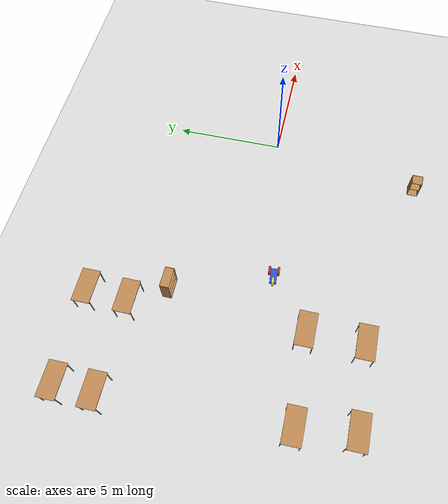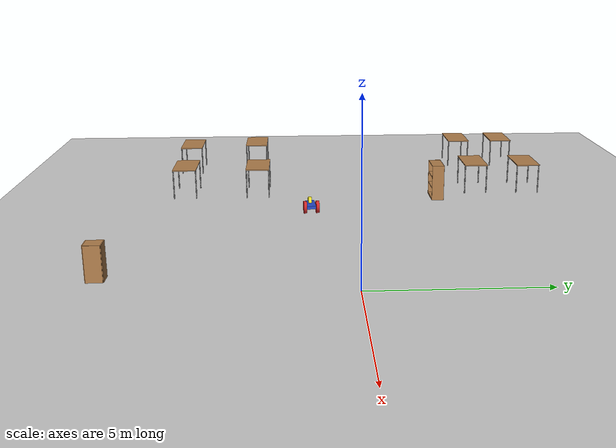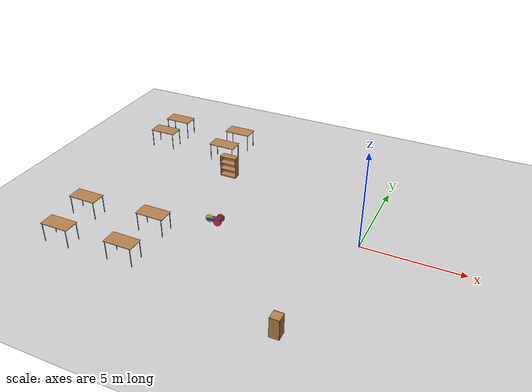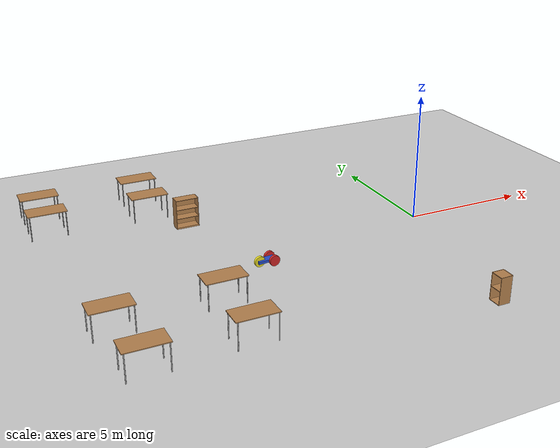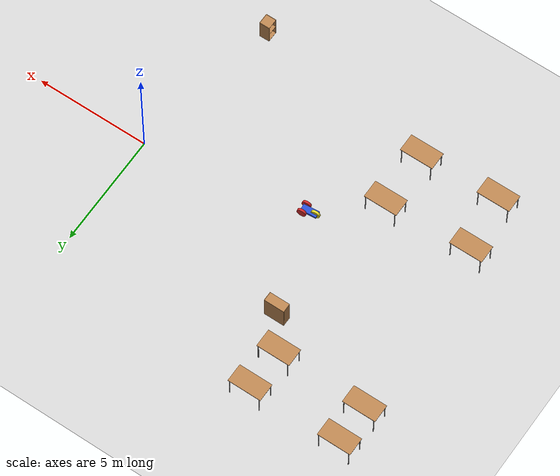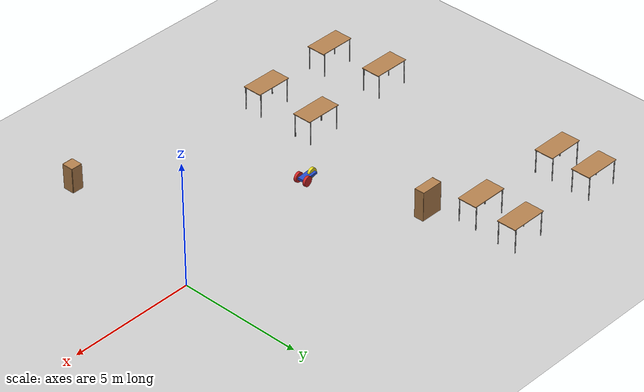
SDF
<sdf version="1.6">
 <world name="default">
  <model name="ground_plane">
   <static>1</static>
   <link name="link">
    <collision name="collision">
     <geometry><plane><normal>0 0 1</normal><size>100 100</size></plane></geometry>
     <surface><friction><ode><mu>100</mu><mu2>50</mu2></ode></friction></surface>
    </collision>
    <visual name="visual">
     <cast_shadows>0</cast_shadows>
     <geometry><plane><normal>0 0 1</normal><size>100 100</size></plane></geometry>
     <material>
      <script><uri>file://media/materials/scripts/gazebo.material</uri><name>Gazebo/Grey</name></script>
     </material>
    </visual>
   </link>
  </model>
  <model name="bookshelf">
   <static>1</static>
   <link name="link">
    <inertial><mass>1</mass></inertial>
    <collision name="back">
     <pose>0 0.005 0.6 0 -0 0</pose>
     <geometry><box><size>0.9 0.01 1.2</size></box></geometry>
    </collision>
    <visual name="visual1">
     <pose>0 0.005 0.6 0 -0 0</pose>
     <geometry><box><size>0.9 0.01 1.2</size></box></geometry>
     <material>
      <script><uri>file://media/materials/scripts/gazebo.material</uri><name>Gazebo/Wood</name></script>
     </material>
    </visual>
    <collision name="left_side">
     <pose>0.45 -0.195 0.6 0 -0 0</pose>
     <geometry><box><size>0.02 0.4 1.2</size></box></geometry>
    </collision>
    <visual name="visual2">
     <pose>0.45 -0.195 0.6 0 -0 0</pose>
     <geometry><box><size>0.02 0.4 1.2</size></box></geometry>
     <material>
      <script><uri>file://media/materials/scripts/gazebo.material</uri><name>Gazebo/Wood</name></script>
     </material>
    </visual>
    <collision name="right_side">
     <pose>-0.45 -0.195 0.6 0 -0 0</pose>
     <geometry><box><size>0.02 0.4 1.2</size></box></geometry>
    </collision>
    <visual name="visual3">
     <pose>-0.45 -0.195 0.6 0 -0 0</pose>
     <geometry><box><size>0.02 0.4 1.2</size></box></geometry>
     <material>
      <script><uri>file://media/materials/scripts/gazebo.material</uri><name>Gazebo/Wood</name></script>
     </material>
    </visual>
    <collision name="bottom">
     <pose>0 -0.195 0.03 0 -0 0</pose>
     <geometry><box><size>0.88 0.4 0.06</size></box></geometry>
    </collision>
    <visual name="visual4">
     <pose>0 -0.195 0.03 0 -0 0</pose>
     <geometry><box><size>0.88 0.4 0.06</size></box></geometry>
     <material>
      <script><uri>file://media/materials/scripts/gazebo.material</uri><name>Gazebo/Wood</name></script>
     </material>
    </visual>
    <collision name="top">
     <pose>0 -0.195 1.19 0 -0 0</pose>
     <geometry><box><size>0.88 0.4 0.02</size></box></geometry>
    </collision>
    <visual name="visual5">
     <pose>0 -0.195 1.19 0 -0 0</pose>
     <geometry><box><size>0.88 0.4 0.02</size></box></geometry>
     <material>
      <script><uri>file://media/materials/scripts/gazebo.material</uri><name>Gazebo/Wood</name></script>
     </material>
    </visual>
    <collision name="low_shelf">
     <pose>0 -0.195 0.43 0 -0 0</pose>
     <geometry><box><size>0.88 0.4 0.02</size></box></geometry>
    </collision>
    <visual name="visual6">
     <pose>0 -0.195 0.43 0 -0 0</pose>
     <geometry><box><size>0.88 0.4 0.02</size></box></geometry>
     <material>
      <script><uri>file://media/materials/scripts/gazebo.material</uri><name>Gazebo/Wood</name></script>
     </material>
    </visual>
    <collision name="high_shelf">
     <pose>0 -0.195 0.8 0 -0 0</pose>
     <geometry><box><size>0.88 0.4 0.02</size></box></geometry>
    </collision>
    <visual name="visual7">
     <pose>0 -0.195 0.8 0 -0 0</pose>
     <geometry><box><size>0.88 0.4 0.02</size></box></geometry>
     <material>
      <script><uri>file://media/materials/scripts/gazebo.material</uri><name>Gazebo/Wood</name></script>
     </material>
    </visual>
   </link>
   <pose>-8.52294 3.40116 0 0 -0 0</pose>
  </model>
  <model name="table">
   <static>1</static>
   <link name="link">
    <collision name="surface">
     <pose>0 0 1 0 -0 0</pose>
     <geometry><box><size>1.5 0.8 0.03</size></box></geometry>
     <surface><friction><ode><mu>0.6</mu><mu2>0.6</mu2></ode></friction></surface>
    </collision>
    <visual name="visual1">
     <pose>0 0 1 0 -0 0</pose>
     <geometry><box><size>1.5 0.8 0.03</size></box></geometry>
     <material>
      <script><uri>file://media/materials/scripts/gazebo.material</uri><name>Gazebo/Wood</name></script>
     </material>
    </visual>
    <collision name="front_left_leg">
     <pose>0.68 0.38 0.5 0 -0 0</pose>
     <geometry><cylinder><radius>0.02</radius><length>1</length></cylinder></geometry>
    </collision>
    <visual name="front_left_leg">
     <pose>0.68 0.38 0.5 0 -0 0</pose>
     <geometry><cylinder><radius>0.02</radius><length>1</length></cylinder></geometry>
     <material>
      <script><uri>file://media/materials/scripts/gazebo.material</uri><name>Gazebo/Grey</name></script>
     </material>
    </visual>
    <collision name="front_right_leg">
     <pose>0.68 -0.38 0.5 0 -0 0</pose>
     <geometry><cylinder><radius>0.02</radius><length>1</length></cylinder></geometry>
    </collision>
    <visual name="front_right_leg">
     <pose>0.68 -0.38 0.5 0 -0 0</pose>
     <geometry><cylinder><radius>0.02</radius><length>1</length></cylinder></geometry>
     <material>
      <script><uri>file://media/materials/scripts/gazebo.material</uri><name>Gazebo/Grey</name></script>
     </material>
    </visual>
    <collision name="back_right_leg">
     <pose>-0.68 -0.38 0.5 0 -0 0</pose>
     <geometry><cylinder><radius>0.02</radius><length>1</length></cylinder></geometry>
    </collision>
    <visual name="back_right_leg">
     <pose>-0.68 -0.38 0.5 0 -0 0</pose>
     <geometry><cylinder><radius>0.02</radius><length>1</length></cylinder></geometry>
     <material>
      <script><uri>file://media/materials/scripts/gazebo.material</uri><name>Gazebo/Grey</name></script>
     </material>
    </visual>
    <collision name="back_left_leg">
     <pose>-0.68 0.38 0.5 0 -0 0</pose>
     <geometry><cylinder><radius>0.02</radius><length>1</length></cylinder></geometry>
    </collision>
    <visual name="back_left_leg">
     <pose>-0.68 0.38 0.5 0 -0 0</pose>
     <geometry><cylinder><radius>0.02</radius><length>1</length></cylinder></geometry>
     <material>
      <script><uri>file://media/materials/scripts/gazebo.material</uri><name>Gazebo/Grey</name></script>
     </material>
    </visual>
   </link>
   <pose>-13.587 6.42629 0 0 -0 0</pose>
  </model>
  <model name="table_0">
   <static>1</static>
   <link name="link">
    <collision name="surface">
     <pose>0 0 1 0 -0 0</pose>
     <geometry><box><size>1.5 0.8 0.03</size></box></geometry>
     <surface><friction><ode><mu>0.6</mu><mu2>0.6</mu2></ode></friction></surface>
    </collision>
    <visual name="visual1">
     <pose>0 0 1 0 -0 0</pose>
     <geometry><box><size>1.5 0.8 0.03</size></box></geometry>
     <material>
      <script><uri>file://media/materials/scripts/gazebo.material</uri><name>Gazebo/Wood</name></script>
     </material>
    </visual>
    <collision name="front_left_leg">
     <pose>0.68 0.38 0.5 0 -0 0</pose>
     <geometry><cylinder><radius>0.02</radius><length>1</length></cylinder></geometry>
    </collision>
    <visual name="front_left_leg">
     <pose>0.68 0.38 0.5 0 -0 0</pose>
     <geometry><cylinder><radius>0.02</radius><length>1</length></cylinder></geometry>
     <material>
      <script><uri>file://media/materials/scripts/gazebo.material</uri><name>Gazebo/Grey</name></script>
     </material>
    </visual>
    <collision name="front_right_leg">
     <pose>0.68 -0.38 0.5 0 -0 0</pose>
     <geometry><cylinder><radius>0.02</radius><length>1</length></cylinder></geometry>
    </collision>
    <visual name="front_right_leg">
     <pose>0.68 -0.38 0.5 0 -0 0</pose>
     <geometry><cylinder><radius>0.02</radius><length>1</length></cylinder></geometry>
     <material>
      <script><uri>file://media/materials/scripts/gazebo.material</uri><name>Gazebo/Grey</name></script>
     </material>
    </visual>
    <collision name="back_right_leg">
     <pose>-0.68 -0.38 0.5 0 -0 0</pose>
     <geometry><cylinder><radius>0.02</radius><length>1</length></cylinder></geometry>
    </collision>
    <visual name="back_right_leg">
     <pose>-0.68 -0.38 0.5 0 -0 0</pose>
     <geometry><cylinder><radius>0.02</radius><length>1</length></cylinder></geometry>
     <material>
      <script><uri>file://media/materials/scripts/gazebo.material</uri><name>Gazebo/Grey</name></script>
     </material>
    </visual>
    <collision name="back_left_leg">
     <pose>-0.68 0.38 0.5 0 -0 0</pose>
     <geometry><cylinder><radius>0.02</radius><length>1</length></cylinder></geometry>
    </collision>
    <visual name="back_left_leg">
     <pose>-0.68 0.38 0.5 0 -0 0</pose>
     <geometry><cylinder><radius>0.02</radius><length>1</length></cylinder></geometry>
     <material>
      <script><uri>file://media/materials/scripts/gazebo.material</uri><name>Gazebo/Grey</name></script>
     </material>
    </visual>
   </link>
   <pose>-13.6033 4.76301 0 0 -0 0</pose>
  </model>
  <model name="table_1">
   <static>1</static>
   <link name="link">
    <collision name="surface">
     <pose>0 0 1 0 -0 0</pose>
     <geometry><box><size>1.5 0.8 0.03</size></box></geometry>
     <surface><friction><ode><mu>0.6</mu><mu2>0.6</mu2></ode></friction></surface>
    </collision>
    <visual name="visual1">
     <pose>0 0 1 0 -0 0</pose>
     <geometry><box><size>1.5 0.8 0.03</size></box></geometry>
     <material>
      <script><uri>file://media/materials/scripts/gazebo.material</uri><name>Gazebo/Wood</name></script>
     </material>
    </visual>
    <collision name="front_left_leg">
     <pose>0.68 0.38 0.5 0 -0 0</pose>
     <geometry><cylinder><radius>0.02</radius><length>1</length></cylinder></geometry>
    </collision>
    <visual name="front_left_leg">
     <pose>0.68 0.38 0.5 0 -0 0</pose>
     <geometry><cylinder><radius>0.02</radius><length>1</length></cylinder></geometry>
     <material>
      <script><uri>file://media/materials/scripts/gazebo.material</uri><name>Gazebo/Grey</name></script>
     </material>
    </visual>
    <collision name="front_right_leg">
     <pose>0.68 -0.38 0.5 0 -0 0</pose>
     <geometry><cylinder><radius>0.02</radius><length>1</length></cylinder></geometry>
    </collision>
    <visual name="front_right_leg">
     <pose>0.68 -0.38 0.5 0 -0 0</pose>
     <geometry><cylinder><radius>0.02</radius><length>1</length></cylinder></geometry>
     <material>
      <script><uri>file://media/materials/scripts/gazebo.material</uri><name>Gazebo/Grey</name></script>
     </material>
    </visual>
    <collision name="back_right_leg">
     <pose>-0.68 -0.38 0.5 0 -0 0</pose>
     <geometry><cylinder><radius>0.02</radius><length>1</length></cylinder></geometry>
    </collision>
    <visual name="back_right_leg">
     <pose>-0.68 -0.38 0.5 0 -0 0</pose>
     <geometry><cylinder><radius>0.02</radius><length>1</length></cylinder></geometry>
     <material>
      <script><uri>file://media/materials/scripts/gazebo.material</uri><name>Gazebo/Grey</name></script>
     </material>
    </visual>
    <collision name="back_left_leg">
     <pose>-0.68 0.38 0.5 0 -0 0</pose>
     <geometry><cylinder><radius>0.02</radius><length>1</length></cylinder></geometry>
    </collision>
    <visual name="back_left_leg">
     <pose>-0.68 0.38 0.5 0 -0 0</pose>
     <geometry><cylinder><radius>0.02</radius><length>1</length></cylinder></geometry>
     <material>
      <script><uri>file://media/materials/scripts/gazebo.material</uri><name>Gazebo/Grey</name></script>
     </material>
    </visual>
   </link>
   <pose>-9.54652 6.49752 0 0 -0 0</pose>
  </model>
  <model name="table_2">
   <static>1</static>
   <link name="link">
    <collision name="surface">
     <pose>0 0 1 0 -0 0</pose>
     <geometry><box><size>1.5 0.8 0.03</size></box></geometry>
     <surface><friction><ode><mu>0.6</mu><mu2>0.6</mu2></ode></friction></surface>
    </collision>
    <visual name="visual1">
     <pose>0 0 1 0 -0 0</pose>
     <geometry><box><size>1.5 0.8 0.03</size></box></geometry>
     <material>
      <script><uri>file://media/materials/scripts/gazebo.material</uri><name>Gazebo/Wood</name></script>
     </material>
    </visual>
    <collision name="front_left_leg">
     <pose>0.68 0.38 0.5 0 -0 0</pose>
     <geometry><cylinder><radius>0.02</radius><length>1</length></cylinder></geometry>
    </collision>
    <visual name="front_left_leg">
     <pose>0.68 0.38 0.5 0 -0 0</pose>
     <geometry><cylinder><radius>0.02</radius><length>1</length></cylinder></geometry>
     <material>
      <script><uri>file://media/materials/scripts/gazebo.material</uri><name>Gazebo/Grey</name></script>
     </material>
    </visual>
    <collision name="front_right_leg">
     <pose>0.68 -0.38 0.5 0 -0 0</pose>
     <geometry><cylinder><radius>0.02</radius><length>1</length></cylinder></geometry>
    </collision>
    <visual name="front_right_leg">
     <pose>0.68 -0.38 0.5 0 -0 0</pose>
     <geometry><cylinder><radius>0.02</radius><length>1</length></cylinder></geometry>
     <material>
      <script><uri>file://media/materials/scripts/gazebo.material</uri><name>Gazebo/Grey</name></script>
     </material>
    </visual>
    <collision name="back_right_leg">
     <pose>-0.68 -0.38 0.5 0 -0 0</pose>
     <geometry><cylinder><radius>0.02</radius><length>1</length></cylinder></geometry>
    </collision>
    <visual name="back_right_leg">
     <pose>-0.68 -0.38 0.5 0 -0 0</pose>
     <geometry><cylinder><radius>0.02</radius><length>1</length></cylinder></geometry>
     <material>
      <script><uri>file://media/materials/scripts/gazebo.material</uri><name>Gazebo/Grey</name></script>
     </material>
    </visual>
    <collision name="back_left_leg">
     <pose>-0.68 0.38 0.5 0 -0 0</pose>
     <geometry><cylinder><radius>0.02</radius><length>1</length></cylinder></geometry>
    </collision>
    <visual name="back_left_leg">
     <pose>-0.68 0.38 0.5 0 -0 0</pose>
     <geometry><cylinder><radius>0.02</radius><length>1</length></cylinder></geometry>
     <material>
      <script><uri>file://media/materials/scripts/gazebo.material</uri><name>Gazebo/Grey</name></script>
     </material>
    </visual>
   </link>
   <pose>-9.61607 4.67874 0 0 -0 0</pose>
  </model>
  <model name="table_3">
   <static>1</static>
   <link name="link">
    <collision name="surface">
     <pose>0 0 1 0 -0 0</pose>
     <geometry><box><size>1.5 0.8 0.03</size></box></geometry>
     <surface><friction><ode><mu>0.6</mu><mu2>0.6</mu2></ode></friction></surface>
    </collision>
    <visual name="visual1">
     <pose>0 0 1 0 -0 0</pose>
     <geometry><box><size>1.5 0.8 0.03</size></box></geometry>
     <material>
      <script><uri>file://media/materials/scripts/gazebo.material</uri><name>Gazebo/Wood</name></script>
     </material>
    </visual>
    <collision name="front_left_leg">
     <pose>0.68 0.38 0.5 0 -0 0</pose>
     <geometry><cylinder><radius>0.02</radius><length>1</length></cylinder></geometry>
    </collision>
    <visual name="front_left_leg">
     <pose>0.68 0.38 0.5 0 -0 0</pose>
     <geometry><cylinder><radius>0.02</radius><length>1</length></cylinder></geometry>
     <material>
      <script><uri>file://media/materials/scripts/gazebo.material</uri><name>Gazebo/Grey</name></script>
     </material>
    </visual>
    <collision name="front_right_leg">
     <pose>0.68 -0.38 0.5 0 -0 0</pose>
     <geometry><cylinder><radius>0.02</radius><length>1</length></cylinder></geometry>
    </collision>
    <visual name="front_right_leg">
     <pose>0.68 -0.38 0.5 0 -0 0</pose>
     <geometry><cylinder><radius>0.02</radius><length>1</length></cylinder></geometry>
     <material>
      <script><uri>file://media/materials/scripts/gazebo.material</uri><name>Gazebo/Grey</name></script>
     </material>
    </visual>
    <collision name="back_right_leg">
     <pose>-0.68 -0.38 0.5 0 -0 0</pose>
     <geometry><cylinder><radius>0.02</radius><length>1</length></cylinder></geometry>
    </collision>
    <visual name="back_right_leg">
     <pose>-0.68 -0.38 0.5 0 -0 0</pose>
     <geometry><cylinder><radius>0.02</radius><length>1</length></cylinder></geometry>
     <material>
      <script><uri>file://media/materials/scripts/gazebo.material</uri><name>Gazebo/Grey</name></script>
     </material>
    </visual>
    <collision name="back_left_leg">
     <pose>-0.68 0.38 0.5 0 -0 0</pose>
     <geometry><cylinder><radius>0.02</radius><length>1</length></cylinder></geometry>
    </collision>
    <visual name="back_left_leg">
     <pose>-0.68 0.38 0.5 0 -0 0</pose>
     <geometry><cylinder><radius>0.02</radius><length>1</length></cylinder></geometry>
     <material>
      <script><uri>file://media/materials/scripts/gazebo.material</uri><name>Gazebo/Grey</name></script>
     </material>
    </visual>
   </link>
   <pose>-9.41374 -2.94265 0 0 -0 0</pose>
  </model>
  <model name="table_4">
   <static>1</static>
   <link name="link">
    <collision name="surface">
     <pose>0 0 1 0 -0 0</pose>
     <geometry><box><size>1.5 0.8 0.03</size></box></geometry>
     <surface><friction><ode><mu>0.6</mu><mu2>0.6</mu2></ode></friction></surface>
    </collision>
    <visual name="visual1">
     <pose>0 0 1 0 -0 0</pose>
     <geometry><box><size>1.5 0.8 0.03</size></box></geometry>
     <material>
      <script><uri>file://media/materials/scripts/gazebo.material</uri><name>Gazebo/Wood</name></script>
     </material>
    </visual>
    <collision name="front_left_leg">
     <pose>0.68 0.38 0.5 0 -0 0</pose>
     <geometry><cylinder><radius>0.02</radius><length>1</length></cylinder></geometry>
    </collision>
    <visual name="front_left_leg">
     <pose>0.68 0.38 0.5 0 -0 0</pose>
     <geometry><cylinder><radius>0.02</radius><length>1</length></cylinder></geometry>
     <material>
      <script><uri>file://media/materials/scripts/gazebo.material</uri><name>Gazebo/Grey</name></script>
     </material>
    </visual>
    <collision name="front_right_leg">
     <pose>0.68 -0.38 0.5 0 -0 0</pose>
     <geometry><cylinder><radius>0.02</radius><length>1</length></cylinder></geometry>
    </collision>
    <visual name="front_right_leg">
     <pose>0.68 -0.38 0.5 0 -0 0</pose>
     <geometry><cylinder><radius>0.02</radius><length>1</length></cylinder></geometry>
     <material>
      <script><uri>file://media/materials/scripts/gazebo.material</uri><name>Gazebo/Grey</name></script>
     </material>
    </visual>
    <collision name="back_right_leg">
     <pose>-0.68 -0.38 0.5 0 -0 0</pose>
     <geometry><cylinder><radius>0.02</radius><length>1</length></cylinder></geometry>
    </collision>
    <visual name="back_right_leg">
     <pose>-0.68 -0.38 0.5 0 -0 0</pose>
     <geometry><cylinder><radius>0.02</radius><length>1</length></cylinder></geometry>
     <material>
      <script><uri>file://media/materials/scripts/gazebo.material</uri><name>Gazebo/Grey</name></script>
     </material>
    </visual>
    <collision name="back_left_leg">
     <pose>-0.68 0.38 0.5 0 -0 0</pose>
     <geometry><cylinder><radius>0.02</radius><length>1</length></cylinder></geometry>
    </collision>
    <visual name="back_left_leg">
     <pose>-0.68 0.38 0.5 0 -0 0</pose>
     <geometry><cylinder><radius>0.02</radius><length>1</length></cylinder></geometry>
     <material>
      <script><uri>file://media/materials/scripts/gazebo.material</uri><name>Gazebo/Grey</name></script>
     </material>
    </visual>
   </link>
   <pose>-9.43487 -5.43398 0 0 -0 0</pose>
  </model>
  <model name="table_5">
   <static>1</static>
   <link name="link">
    <collision name="surface">
     <pose>0 0 1 0 -0 0</pose>
     <geometry><box><size>1.5 0.8 0.03</size></box></geometry>
     <surface><friction><ode><mu>0.6</mu><mu2>0.6</mu2></ode></friction></surface>
    </collision>
    <visual name="visual1">
     <pose>0 0 1 0 -0 0</pose>
     <geometry><box><size>1.5 0.8 0.03</size></box></geometry>
     <material>
      <script><uri>file://media/materials/scripts/gazebo.material</uri><name>Gazebo/Wood</name></script>
     </material>
    </visual>
    <collision name="front_left_leg">
     <pose>0.68 0.38 0.5 0 -0 0</pose>
     <geometry><cylinder><radius>0.02</radius><length>1</length></cylinder></geometry>
    </collision>
    <visual name="front_left_leg">
     <pose>0.68 0.38 0.5 0 -0 0</pose>
     <geometry><cylinder><radius>0.02</radius><length>1</length></cylinder></geometry>
     <material>
      <script><uri>file://media/materials/scripts/gazebo.material</uri><name>Gazebo/Grey</name></script>
     </material>
    </visual>
    <collision name="front_right_leg">
     <pose>0.68 -0.38 0.5 0 -0 0</pose>
     <geometry><cylinder><radius>0.02</radius><length>1</length></cylinder></geometry>
    </collision>
    <visual name="front_right_leg">
     <pose>0.68 -0.38 0.5 0 -0 0</pose>
     <geometry><cylinder><radius>0.02</radius><length>1</length></cylinder></geometry>
     <material>
      <script><uri>file://media/materials/scripts/gazebo.material</uri><name>Gazebo/Grey</name></script>
     </material>
    </visual>
    <collision name="back_right_leg">
     <pose>-0.68 -0.38 0.5 0 -0 0</pose>
     <geometry><cylinder><radius>0.02</radius><length>1</length></cylinder></geometry>
    </collision>
    <visual name="back_right_leg">
     <pose>-0.68 -0.38 0.5 0 -0 0</pose>
     <geometry><cylinder><radius>0.02</radius><length>1</length></cylinder></geometry>
     <material>
      <script><uri>file://media/materials/scripts/gazebo.material</uri><name>Gazebo/Grey</name></script>
     </material>
    </visual>
    <collision name="back_left_leg">
     <pose>-0.68 0.38 0.5 0 -0 0</pose>
     <geometry><cylinder><radius>0.02</radius><length>1</length></cylinder></geometry>
    </collision>
    <visual name="back_left_leg">
     <pose>-0.68 0.38 0.5 0 -0 0</pose>
     <geometry><cylinder><radius>0.02</radius><length>1</length></cylinder></geometry>
     <material>
      <script><uri>file://media/materials/scripts/gazebo.material</uri><name>Gazebo/Grey</name></script>
     </material>
    </visual>
   </link>
   <pose>-13.2376 -3.13083 0 0 -0 0</pose>
  </model>
  <model name="table_6">
   <static>1</static>
   <link name="link">
    <collision name="surface">
     <pose>0 0 1 0 -0 0</pose>
     <geometry><box><size>1.5 0.8 0.03</size></box></geometry>
     <surface><friction><ode><mu>0.6</mu><mu2>0.6</mu2></ode></friction></surface>
    </collision>
    <visual name="visual1">
     <pose>0 0 1 0 -0 0</pose>
     <geometry><box><size>1.5 0.8 0.03</size></box></geometry>
     <material>
      <script><uri>file://media/materials/scripts/gazebo.material</uri><name>Gazebo/Wood</name></script>
     </material>
    </visual>
    <collision name="front_left_leg">
     <pose>0.68 0.38 0.5 0 -0 0</pose>
     <geometry><cylinder><radius>0.02</radius><length>1</length></cylinder></geometry>
    </collision>
    <visual name="front_left_leg">
     <pose>0.68 0.38 0.5 0 -0 0</pose>
     <geometry><cylinder><radius>0.02</radius><length>1</length></cylinder></geometry>
     <material>
      <script><uri>file://media/materials/scripts/gazebo.material</uri><name>Gazebo/Grey</name></script>
     </material>
    </visual>
    <collision name="front_right_leg">
     <pose>0.68 -0.38 0.5 0 -0 0</pose>
     <geometry><cylinder><radius>0.02</radius><length>1</length></cylinder></geometry>
    </collision>
    <visual name="front_right_leg">
     <pose>0.68 -0.38 0.5 0 -0 0</pose>
     <geometry><cylinder><radius>0.02</radius><length>1</length></cylinder></geometry>
     <material>
      <script><uri>file://media/materials/scripts/gazebo.material</uri><name>Gazebo/Grey</name></script>
     </material>
    </visual>
    <collision name="back_right_leg">
     <pose>-0.68 -0.38 0.5 0 -0 0</pose>
     <geometry><cylinder><radius>0.02</radius><length>1</length></cylinder></geometry>
    </collision>
    <visual name="back_right_leg">
     <pose>-0.68 -0.38 0.5 0 -0 0</pose>
     <geometry><cylinder><radius>0.02</radius><length>1</length></cylinder></geometry>
     <material>
      <script><uri>file://media/materials/scripts/gazebo.material</uri><name>Gazebo/Grey</name></script>
     </material>
    </visual>
    <collision name="back_left_leg">
     <pose>-0.68 0.38 0.5 0 -0 0</pose>
     <geometry><cylinder><radius>0.02</radius><length>1</length></cylinder></geometry>
    </collision>
    <visual name="back_left_leg">
     <pose>-0.68 0.38 0.5 0 -0 0</pose>
     <geometry><cylinder><radius>0.02</radius><length>1</length></cylinder></geometry>
     <material>
      <script><uri>file://media/materials/scripts/gazebo.material</uri><name>Gazebo/Grey</name></script>
     </material>
    </visual>
   </link>
   <pose>-12.9112 -5.56317 0 0 -0 0</pose>
  </model>
  <model name="cabinet_0">
   <static>1</static>
   <link name="cabinet_bottom_plate">
    <inertial>
     <pose>0 0 -1 0 -0 0</pose>
     <inertia><ixx>2.05</ixx><ixy>0</ixy><ixz>0</ixz><iyy>2.05</iyy><iyz>0</iyz><izz>2.05</izz></inertia>
     <mass>25</mass>
    </inertial>
    <collision name="cabinet_bottom_plate_geom">
     <pose>0 0 0.01 0 -0 0</pose>
     <geometry><box><size>0.45 0.45 0.02</size></box></geometry>
    </collision>
    <visual name="cabinet_bottom_plate_geom_visual">
     <pose>0 0 0.01 0 -0 0</pose>
     <geometry><box><size>0.45 0.45 0.02</size></box></geometry>
     <material>
      <script><uri>file://media/materials/scripts/gazebo.material</uri><name>Gazebo/Wood</name></script>
     </material>
    </visual>
    <collision name="cabinet_bottom_plate_geom_cabinet_back_plate">
     <pose>0.235 0 0.51 0 -0 0</pose>
     <geometry><box><size>0.02 0.45 1.02</size></box></geometry>
    </collision>
    <visual name="cabinet_bottom_plate_geom_cabinet_back_plate_visual">
     <pose>0.235 0 0.51 0 -0 0</pose>
     <geometry><box><size>0.02 0.45 1.02</size></box></geometry>
     <material>
      <script><uri>file://media/materials/scripts/gazebo.material</uri><name>Gazebo/Wood</name></script>
     </material>
    </visual>
    <collision name="cabinet_bottom_plate_geom_cabinet_left_plate">
     <pose>0 0.235 0.51 0 -0 0</pose>
     <geometry><box><size>0.45 0.02 1.02</size></box></geometry>
    </collision>
    <visual name="cabinet_bottom_plate_geom_cabinet_left_plate_visual">
     <pose>0 0.235 0.51 0 -0 0</pose>
     <geometry><box><size>0.45 0.02 1.02</size></box></geometry>
     <material>
      <script><uri>file://media/materials/scripts/gazebo.material</uri><name>Gazebo/Wood</name></script>
     </material>
    </visual>
    <collision name="cabinet_bottom_plate_geom_cabinet_middle_plate">
     <pose>0 0 0.51 0 -0 0</pose>
     <geometry><box><size>0.45 0.45 0.02</size></box></geometry>
    </collision>
    <visual name="cabinet_bottom_plate_geom_cabinet_middle_plate_visual">
     <pose>0 0 0.51 0 -0 0</pose>
     <geometry><box><size>0.45 0.45 0.02</size></box></geometry>
     <material>
      <script><uri>file://media/materials/scripts/gazebo.material</uri><name>Gazebo/Wood</name></script>
     </material>
    </visual>
    <collision name="cabinet_bottom_plate_geom_cabinet_right_plate">
     <pose>0 -0.235 0.51 0 -0 0</pose>
     <geometry><box><size>0.45 0.02 1.02</size></box></geometry>
    </collision>
    <visual name="cabinet_bottom_plate_geom_cabinet_right_plate_visual">
     <pose>0 -0.235 0.51 0 -0 0</pose>
     <geometry><box><size>0.45 0.02 1.02</size></box></geometry>
     <material>
      <script><uri>file://media/materials/scripts/gazebo.material</uri><name>Gazebo/Wood</name></script>
     </material>
    </visual>
    <collision name="cabinet_bottom_plate_geom_cabinet_top_plate">
     <pose>0 0 1.01 0 -0 0</pose>
     <geometry><box><size>0.45 0.45 0.02</size></box></geometry>
    </collision>
    <visual name="cabinet_bottom_plate_geom_cabinet_top_plate_visual">
     <pose>0 0 1.01 0 -0 0</pose>
     <geometry><box><size>0.45 0.45 0.02</size></box></geometry>
     <material>
      <script><uri>file://media/materials/scripts/gazebo.material</uri><name>Gazebo/Wood</name></script>
     </material>
    </visual>
   </link>
   <pose>-1.19186 -6.83845 0 0 -0 0</pose>
  </model>
  <model name="HumanoidRobot">
   <link name="base_link">
    <pose>-0.0625 -5e-06 0 0 -0 0</pose>
    <inertial>
     <mass>1</mass>
     <inertia>
      <ixx>0.166667</ixx>
      <ixy>0</ixy>
      <ixz>0</ixz>
      <iyy>0.166667</iyy>
      <iyz>0</iyz>
      <izz>0.166667</izz>
     </inertia>
    </inertial>
    <visual name="visual">
     <geometry><box><size>0.7 0.3 0.1</size></box></geometry>
     <material>
      <lighting>1</lighting>
      <script><uri>file://media/materials/scripts/gazebo.material</uri><name>Gazebo/Blue</name></script>
      <shader type="pixel"><normal_map>__default__</normal_map></shader>
      <ambient>0 0 1 1</ambient>
      <diffuse>0 0 1 1</diffuse>
      <specular>0 0 0 1</specular>
      <emissive>0 0 0 1</emissive>
     </material>
    </visual>
    <collision name="collision">
     <geometry><box><size>0.7 0.3 0.1</size></box></geometry>
     <surface>
      <friction>
       <ode><mu>1</mu><mu2>1</mu2><fdir1>0 0 0</fdir1><slip1>0</slip1><slip2>0</slip2></ode>
       <torsional>
        <coefficient>1</coefficient>
        <patch_radius>0</patch_radius>
        <surface_radius>0</surface_radius>
        <use_patch_radius>1</use_patch_radius>
        <ode><slip>0</slip></ode>
       </torsional>
      </friction>
      <bounce><restitution_coefficient>0</restitution_coefficient><threshold>1e+06</threshold></bounce>
      <contact>
       <collide_without_contact>0</collide_without_contact>
       <collide_without_contact_bitmask>1</collide_without_contact_bitmask>
       <collide_bitmask>1</collide_bitmask>
       <ode>
        <soft_cfm>0</soft_cfm>
        <soft_erp>0.2</soft_erp>
        <kp>1e+13</kp>
        <kd>1</kd>
        <max_vel>0.01</max_vel>
        <min_depth>0</min_depth>
       </ode>
       <bullet>
        <split_impulse>1</split_impulse>
        <split_impulse_penetration_threshold>-0.01</split_impulse_penetration_threshold>
        <soft_cfm>0</soft_cfm>
        <soft_erp>0.2</soft_erp>
        <kp>1e+13</kp>
        <kd>1</kd>
       </bullet>
      </contact>
     </surface>
    </collision>
   </link>
   <link name="right_wheel">
    <pose>0.1875 -0.200005 0 0 -0 0</pose>
    <inertial>
     <mass>1</mass>
     <inertia><ixx>0.145833</ixx><ixy>0</ixy><ixz>0</ixz><iyy>0.145833</iyy><iyz>0</iyz><izz>0.125</izz></inertia>
    </inertial>
    <visual name="visual">
     <pose>0 0 0 1.5707 -0 0</pose>
     <geometry><cylinder><radius>0.2</radius><length>0.1</length></cylinder></geometry>
     <material>
      <lighting>1</lighting>
      <script><uri>file://media/materials/scripts/gazebo.material</uri><name>Gazebo/Red</name></script>
      <shader type="pixel"><normal_map>__default__</normal_map></shader>
      <ambient>1 0 0 1</ambient>
      <diffuse>1 0 0 1</diffuse>
      <specular>0 0 0 1</specular>
      <emissive>0 0 0 1</emissive>
     </material>
    </visual>
    <collision name="collision">
     <pose>0 0 0 1.5707 -0 0</pose>
     <geometry><cylinder><radius>0.2</radius><length>0.1</length></cylinder></geometry>
     <surface>
      <friction>
       <ode><mu>1</mu><mu2>1</mu2><fdir1>0 0 0</fdir1><slip1>0</slip1><slip2>0</slip2></ode>
       <torsional>
        <coefficient>1</coefficient>
        <patch_radius>0</patch_radius>
        <surface_radius>0</surface_radius>
        <use_patch_radius>1</use_patch_radius>
        <ode><slip>0</slip></ode>
       </torsional>
      </friction>
      <bounce><restitution_coefficient>0</restitution_coefficient><threshold>1e+06</threshold></bounce>
      <contact>
       <collide_without_contact>0</collide_without_contact>
       <collide_without_contact_bitmask>1</collide_without_contact_bitmask>
       <collide_bitmask>1</collide_bitmask>
       <ode>
        <soft_cfm>0</soft_cfm>
        <soft_erp>0.2</soft_erp>
        <kp>1e+13</kp>
        <kd>1</kd>
        <max_vel>0.01</max_vel>
        <min_depth>0</min_depth>
       </ode>
       <bullet>
        <split_impulse>1</split_impulse>
        <split_impulse_penetration_threshold>-0.01</split_impulse_penetration_threshold>
        <soft_cfm>0</soft_cfm>
        <soft_erp>0.2</soft_erp>
        <kp>1e+13</kp>
        <kd>1</kd>
       </bullet>
      </contact>
     </surface>
    </collision>
   </link>
   <link name="left_wheel">
    <pose>0.1875 0.199995 0 0 -0 0</pose>
    <inertial>
     <mass>1</mass>
     <inertia><ixx>0.145833</ixx><ixy>0</ixy><ixz>0</ixz><iyy>0.145833</iyy><iyz>0</iyz><izz>0.125</izz></inertia>
    </inertial>
    <visual name="visual">
     <pose>0 0 0 1.5707 -0 0</pose>
     <geometry><cylinder><radius>0.2</radius><length>0.1</length></cylinder></geometry>
     <material>
      <lighting>1</lighting>
      <script><uri>file://media/materials/scripts/gazebo.material</uri><name>Gazebo/Red</name></script>
      <shader type="pixel"><normal_map>__default__</normal_map></shader>
      <ambient>1 0 0 1</ambient>
      <diffuse>1 0 0 1</diffuse>
      <specular>0 0 0 1</specular>
      <emissive>0 0 0 1</emissive>
     </material>
    </visual>
    <collision name="collision">
     <pose>0 0 0 1.5707 -0 0</pose>
     <geometry><cylinder><radius>0.2</radius><length>0.1</length></cylinder></geometry>
     <surface>
      <friction>
       <ode><mu>1</mu><mu2>1</mu2><fdir1>0 0 0</fdir1><slip1>0</slip1><slip2>0</slip2></ode>
       <torsional>
        <coefficient>1</coefficient>
        <patch_radius>0</patch_radius>
        <surface_radius>0</surface_radius>
        <use_patch_radius>1</use_patch_radius>
        <ode><slip>0</slip></ode>
       </torsional>
      </friction>
      <bounce><restitution_coefficient>0</restitution_coefficient><threshold>1e+06</threshold></bounce>
      <contact>
       <collide_without_contact>0</collide_without_contact>
       <collide_without_contact_bitmask>1</collide_without_contact_bitmask>
       <collide_bitmask>1</collide_bitmask>
       <ode>
        <soft_cfm>0</soft_cfm>
        <soft_erp>0.2</soft_erp>
        <kp>1e+13</kp>
        <kd>1</kd>
        <max_vel>0.01</max_vel>
        <min_depth>0</min_depth>
       </ode>
       <bullet>
        <split_impulse>1</split_impulse>
        <split_impulse_penetration_threshold>-0.01</split_impulse_penetration_threshold>
        <soft_cfm>0</soft_cfm>
        <soft_erp>0.2</soft_erp>
        <kp>1e+13</kp>
        <kd>1</kd>
       </bullet>
      </contact>
     </surface>
    </collision>
   </link>
   <link name="caster_wheel">
    <pose>-0.3125 -5e-06 0 0 -0 0</pose>
    <inertial>
     <mass>1</mass>
     <inertia><ixx>0.145833</ixx><ixy>0</ixy><ixz>0</ixz><iyy>0.145833</iyy><iyz>0</iyz><izz>0.125</izz></inertia>
    </inertial>
    <visual name="visual">
     <pose>0 0 0 1.5707 -0 0</pose>
     <geometry><cylinder><radius>0.2</radius><length>0.1</length></cylinder></geometry>
     <material>
      <lighting>1</lighting>
      <script><uri>file://media/materials/scripts/gazebo.material</uri><name>Gazebo/Yellow</name></script>
      <shader type="pixel"><normal_map>__default__</normal_map></shader>
      <ambient>1 1 0 1</ambient>
      <diffuse>1 1 0 1</diffuse>
      <specular>0 0 0 1</specular>
      <emissive>0 0 0 1</emissive>
     </material>
    </visual>
    <collision name="collision">
     <pose>0 0 0 1.5707 -0 0</pose>
     <geometry><cylinder><radius>0.2</radius><length>0.1</length></cylinder></geometry>
     <surface>
      <friction>
       <ode><mu>1</mu><mu2>1</mu2><fdir1>0 0 0</fdir1><slip1>0</slip1><slip2>0</slip2></ode>
       <torsional>
        <coefficient>1</coefficient>
        <patch_radius>0</patch_radius>
        <surface_radius>0</surface_radius>
        <use_patch_radius>1</use_patch_radius>
        <ode><slip>0</slip></ode>
       </torsional>
      </friction>
      <bounce><restitution_coefficient>0</restitution_coefficient><threshold>1e+06</threshold></bounce>
      <contact>
       <collide_without_contact>0</collide_without_contact>
       <collide_without_contact_bitmask>1</collide_without_contact_bitmask>
       <collide_bitmask>1</collide_bitmask>
       <ode>
        <soft_cfm>0</soft_cfm>
        <soft_erp>0.2</soft_erp>
        <kp>1e+13</kp>
        <kd>1</kd>
        <max_vel>0.01</max_vel>
        <min_depth>0</min_depth>
       </ode>
       <bullet>
        <split_impulse>1</split_impulse>
        <split_impulse_penetration_threshold>-0.01</split_impulse_penetration_threshold>
        <soft_cfm>0</soft_cfm>
        <soft_erp>0.2</soft_erp>
        <kp>1e+13</kp>
        <kd>1</kd>
       </bullet>
      </contact>
     </surface>
    </collision>
   </link>
   <joint name="base_link_JOINT_0" type="revolute">
    <parent>base_link</parent>
    <child>right_wheel</child>
    <axis>
     <xyz>0 0 1</xyz>
     <use_parent_model_frame>0</use_parent_model_frame>
     <limit>
      <lower>-1.79769e+308</lower>
      <upper>1.79769e+308</upper>
      <effort>-1</effort>
      <velocity>-1</velocity>
     </limit>
     <dynamics>
      <spring_reference>0</spring_reference>
      <spring_stiffness>0</spring_stiffness>
      <damping>0</damping>
     </dynamics>
    </axis>
    <physics>
     <ode><limit><cfm>0</cfm><erp>0.2</erp></limit><suspension><cfm>0</cfm><erp>0.2</erp></suspension></ode>
    </physics>
   </joint>
   <joint name="base_link_JOINT_1" type="revolute">
    <parent>base_link</parent>
    <child>left_wheel</child>
    <axis>
     <xyz>0 0 1</xyz>
     <use_parent_model_frame>0</use_parent_model_frame>
     <limit>
      <lower>-1.79769e+308</lower>
      <upper>1.79769e+308</upper>
      <effort>-1</effort>
      <velocity>-1</velocity>
     </limit>
     <dynamics>
      <spring_reference>0</spring_reference>
      <spring_stiffness>0</spring_stiffness>
      <damping>0</damping>
     </dynamics>
    </axis>
    <physics>
     <ode><limit><cfm>0</cfm><erp>0.2</erp></limit><suspension><cfm>0</cfm><erp>0.2</erp></suspension></ode>
    </physics>
   </joint>
   <joint name="base_link_JOINT_2" type="fixed">
    <parent>base_link</parent>
    <child>caster_wheel</child>
    <physics>
     <ode><limit><cfm>0</cfm><erp>0.2</erp></limit><suspension><cfm>0</cfm><erp>0.2</erp></suspension></ode>
    </physics>
   </joint>
   <static>0</static>
   <pose>-7.01931 -1.14934 0.199996 5e-06 -3e-06 0.081629</pose>
  </model>
 </world>
</sdf>
